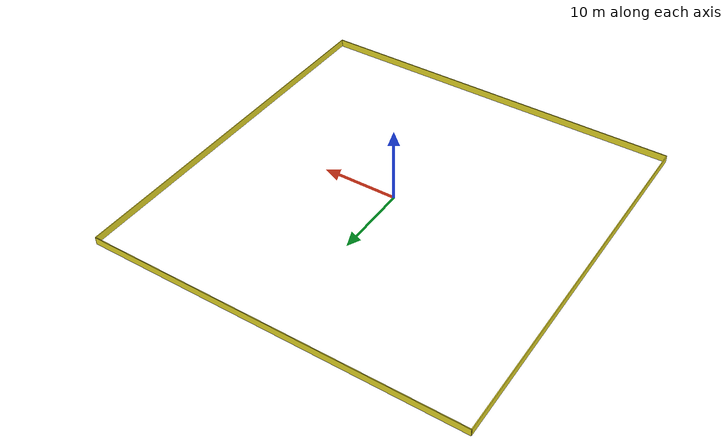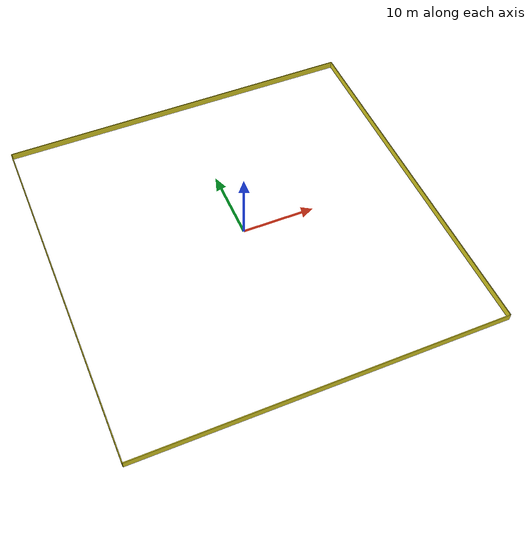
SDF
<?xml version="1.0" ?>
<sdf version="1.4">
  <model name="pen">
    <static>true</static>
    <link name="wall1">
      <pose>25.0 0 0 0 0 0</pose>
      <collision name="wall1_col">
        <pose>0 0 0 0 0 0</pose>
        <geometry>
          <box>
            <size>0.1 50.0 1.0</size>
          </box>
        </geometry>
      </collision>
      <visual name="wall1_vis">
        <pose>0 0 0 0 0 0</pose>
        <geometry>
          <box>
            <size>0.1 50.0 1.0</size>
          </box>
        </geometry>
        <material>
          <script>
            <uri>file://media/materials/scripts/gazebo.material</uri>
            <name>Gazebo/Yellow</name>
          </script>
        </material>
      </visual>
    </link>
    <link name="wall2">
      <pose>-25.0 0 0 0 0 0</pose>
      <collision name="wall2_col">
        <pose>0 0 0 0 0 0</pose>
        <geometry>
          <box>
            <size>0.1 50.0 1.0</size>
          </box>
        </geometry>
      </collision>
      <visual name="wall2_vis">
        <pose>0 0 0 0 0 0</pose>
        <geometry>
          <box>
            <size>0.1 50.0 1.0</size>
          </box>
        </geometry>
        <material>
          <script>
            <uri>file://media/materials/scripts/gazebo.material</uri>
            <name>Gazebo/Yellow</name>
          </script>
        </material>
      </visual>
    </link>
    <link name="wall3">
      <pose>0 25.0 0 0 0 0</pose>
      <collision name="wall3_col">
        <pose>0 0 0 0 0 0</pose>
        <geometry>
          <box>
            <size>50.0 0.1 1.0</size>
          </box>
        </geometry>
      </collision>
      <visual name="wall3_vis">
        <pose>0 0 0 0 0 0</pose>
        <geometry>
          <box>
            <size>50.0 0.1 1.0</size>
          </box>
        </geometry>
        <material>
          <script>
            <uri>file://media/materials/scripts/gazebo.material</uri>
            <name>Gazebo/Yellow</name>
          </script>
        </material>
      </visual>
    </link>
    <link name="wall4">
      <pose>0 -25.0 0 0 0 0</pose>
      <collision name="wall1_col">
        <pose>0 0 0 0 0 0</pose>
        <geometry>
          <box>
            <size>50.0 0.1 1.0</size>
          </box>
        </geometry>
      </collision>
      <visual name="wall1_vis">
        <pose>0 0 0 0 0 0</pose>
        <geometry>
          <box>
            <size>50.0 0.1 1.0</size>
          </box>
        </geometry>
        <material>
          <script>
            <uri>file://media/materials/scripts/gazebo.material</uri>
            <name>Gazebo/Yellow</name>
          </script>
        </material>
      </visual>
    </link>
  </model>
</sdf>
